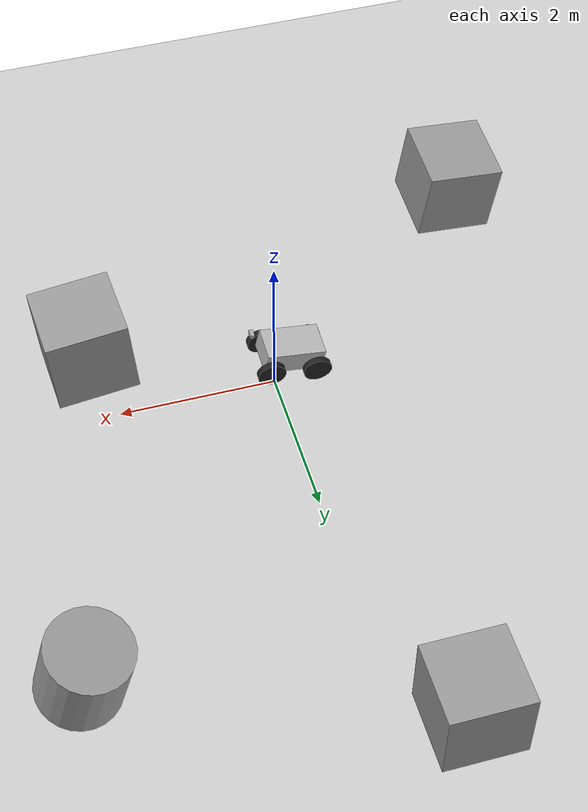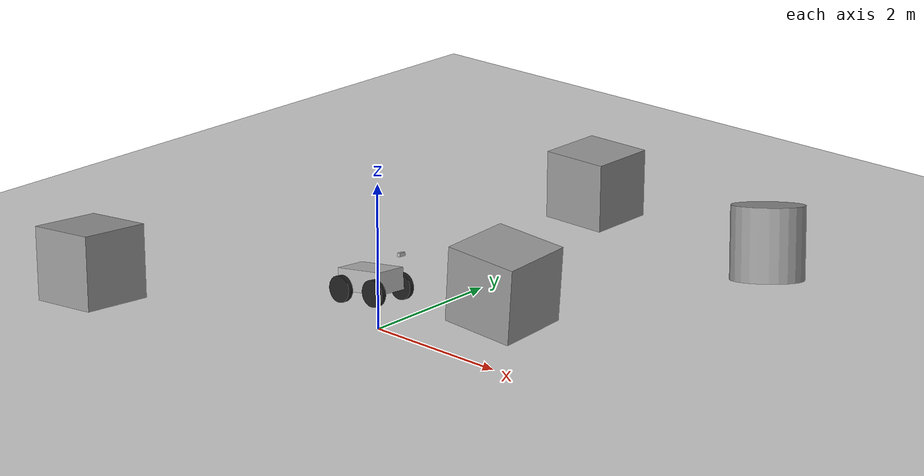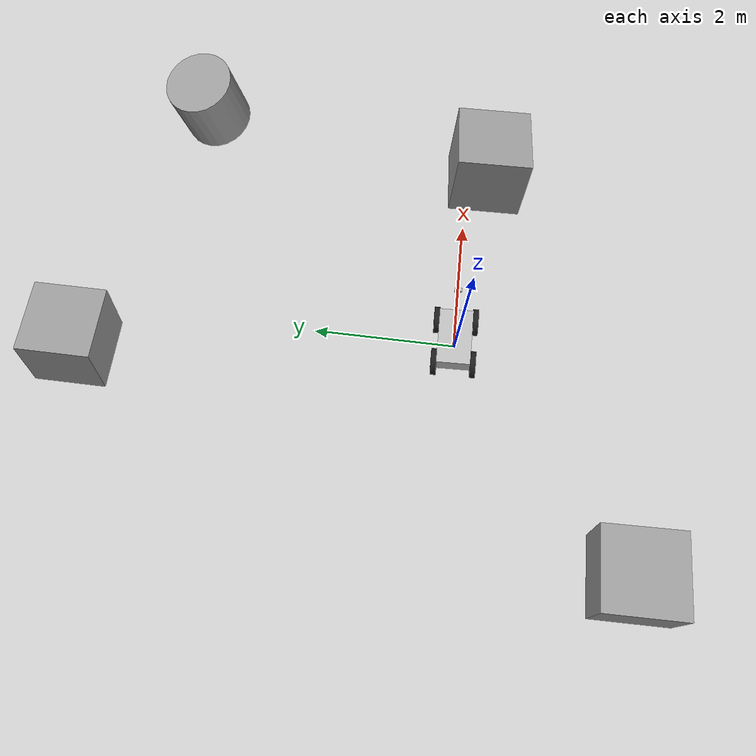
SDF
<sdf version="1.6">
 <world name="default">
  <light name="sun" type="directional">
   <pose>0 0 10 0 -0 0</pose>
   <diffuse>0.8 0.8 0.8 1</diffuse>
   <specular>0.2 0.2 0.2 1</specular>
   <attenuation>
    <range>1000</range>
    <constant>0.9</constant>
    <linear>0.01</linear>
    <quadratic>0.001</quadratic>
   </attenuation>
   <direction>-0.5 0.1 -0.9</direction>
  </light>
  <model name="ground_plane">
   <static>1</static>
   <link name="link">
    <collision name="collision">
     <geometry><plane><normal>0 0 1</normal><size>100 100</size></plane></geometry>
     <surface>
      <contact><collide_bitmask>65535</collide_bitmask></contact>
      <friction><ode><mu>100</mu><mu2>50</mu2></ode></friction>
     </surface>
    </collision>
    <visual name="visual">
     <cast_shadows>0</cast_shadows>
     <geometry><plane><normal>0 0 1</normal><size>100 100</size></plane></geometry>
     <material>
      <script><uri>file://media/materials/scripts/gazebo.material</uri><name>Gazebo/Grey</name></script>
     </material>
    </visual>
   </link>
  </model>
  <gravity>0 0 -9.8</gravity>
  <magnetic_field>6e-06 2.3e-05 -4.2e-05</magnetic_field>
  <atmosphere type="adiabatic"/>
  <physics name="default_physics" default="0" type="ode">
   <max_step_size>0.001</max_step_size>
   <real_time_factor>1</real_time_factor>
   <real_time_update_rate>1000</real_time_update_rate>
  </physics>
  <scene><ambient>0.4 0.4 0.4 1</ambient><background>0.7 0.7 0.7 1</background><shadows>1</shadows></scene>
  <spherical_coordinates>
   <surface_model>EARTH_WGS84</surface_model>
   <latitude_deg>0</latitude_deg>
   <longitude_deg>0</longitude_deg>
   <elevation>0</elevation>
   <heading_deg>0</heading_deg>
  </spherical_coordinates>
  <model name="rover">
   <link name="base_link">
    <inertial>
     <pose>0.00428 0 0.002605 0 -0 0</pose>
     <mass>10.075</mass>
     <inertia>
      <ixx>2.00912</ixx>
      <ixy>0</ixy>
      <ixz>-0.0149814</ixz>
      <iyy>2.03373</iyy>
      <iyz>0</iyz>
      <izz>2.02461</izz>
     </inertia>
    </inertial>
    <collision name="base_link_collision"><geometry><box><size>0.75 0.45 0.3</size></box></geometry></collision>
    <collision name="base_link_fixed_joint_lump__camera_link_collision_1">
     <pose>0.575 0 0.375 0 -0 0</pose>
     <geometry><box><size>0.05 0.1 0.05</size></box></geometry>
    </collision>
    <visual name="base_link_visual"><geometry><box><size>0.75 0.45 0.3</size></box></geometry></visual>
    <visual name="base_link_fixed_joint_lump__camera_link_visual_1">
     <pose>0.575 0 0.375 0 -0 0</pose>
     <geometry><box><size>0.05 0.1 0.05</size></box></geometry>
     <material><script><uri>__default__</uri><name>__default__</name></script></material>
    </visual>
    <sensor name="depth_camera" type="depth">
     <update_rate>30</update_rate>
     <camera name="__default__">
      <horizontal_fov>1.0472</horizontal_fov>
      <image><width>640</width><height>480</height><format>R8G8B8</format></image>
      <clip><near>0.05</near><far>3</far></clip>
     </camera>
     <plugin name="camera_controller" filename="libgazebo_ros_openni_kinect.so">
      <baseline>0.2</baseline>
      <alwaysOn>true</alwaysOn>
      <updateRate>1.0</updateRate>
      <cameraName>d400</cameraName>
      <imageTopicName>/camera/depth/image_raw</imageTopicName>
      <cameraInfoTopicName>/camera/depth/camera_info</cameraInfoTopicName>
      <depthImageTopicName>/camera/depth/image_raw</depthImageTopicName>
      <depthImageInfoTopicName>/camera/depth/camera_info</depthImageInfoTopicName>
      <pointCloudTopicName>/d400/depth/color/points</pointCloudTopicName>
      <frameName>camera_link_optical</frameName>
      <pointCloudCutoff>0.105</pointCloudCutoff>
      <pointCloudCutoffMax>7.0</pointCloudCutoffMax>
      <distortionK1>0.00000001</distortionK1>
      <distortionK2>0.00000001</distortionK2>
      <distortionK3>0.00000001</distortionK3>
      <distortionT1>0.00000001</distortionT1>
      <distortionT2>0.00000001</distortionT2>
      <CxPrime>0</CxPrime>
      <Cx>0</Cx>
      <Cy>0</Cy>
      <focalLength>0</focalLength>
      <hackBaseline>0</hackBaseline>
      <robotNamespace>/</robotNamespace>
     </plugin>
     <pose>0.575 0 0.35 0 -0 0</pose>
    </sensor>
   </link>
   <link name="back_left_wheel">
    <pose>-0.3 0.2625 -0.12 0 -0 0</pose>
    <inertial>
     <mass>1</mass>
     <inertia><ixx>1</ixx><ixy>0</ixy><ixz>0</ixz><iyy>1</iyy><iyz>0</iyz><izz>1</izz></inertia>
    </inertial>
    <collision name="back_left_wheel_collision">
     <pose>0 0 0 -3.14158 1.57079 -1.57078</pose>
     <geometry><cylinder><length>0.075</length><radius>0.18</radius></cylinder></geometry>
     <surface>
      <contact><ode><kp>1e+07</kp><kd>1</kd></ode></contact>
      <friction><ode><mu>200</mu><mu2>100</mu2></ode></friction>
     </surface>
    </collision>
    <visual name="back_left_wheel_visual">
     <pose>0 0 0 -3.14158 1.57079 -1.57078</pose>
     <geometry><cylinder><length>0.075</length><radius>0.18</radius></cylinder></geometry>
     <material>
      <script><name>Gazebo/Black</name><uri>file://media/materials/scripts/gazebo.material</uri></script>
     </material>
    </visual>
   </link>
   <joint name="back_left_wheel_joint" type="revolute">
    <child>back_left_wheel</child>
    <parent>base_link</parent>
    <axis>
     <xyz>0 1 0</xyz>
     <limit><lower>-1e+16</lower><upper>1e+16</upper></limit>
     <dynamics><spring_reference>0</spring_reference><spring_stiffness>0</spring_stiffness></dynamics>
     <use_parent_model_frame>1</use_parent_model_frame>
    </axis>
   </joint>
   <link name="back_right_wheel">
    <pose>-0.3 -0.2625 -0.12 0 -0 0</pose>
    <inertial>
     <mass>1</mass>
     <inertia><ixx>1</ixx><ixy>0</ixy><ixz>0</ixz><iyy>1</iyy><iyz>0</iyz><izz>1</izz></inertia>
    </inertial>
    <collision name="back_right_wheel_collision">
     <pose>0 0 0 -3.14158 1.57079 -1.57078</pose>
     <geometry><cylinder><length>0.075</length><radius>0.18</radius></cylinder></geometry>
     <surface>
      <contact><ode><kp>1e+07</kp><kd>1</kd></ode></contact>
      <friction><ode><mu>200</mu><mu2>100</mu2></ode></friction>
     </surface>
    </collision>
    <visual name="back_right_wheel_visual">
     <pose>0 0 0 -3.14158 1.57079 -1.57078</pose>
     <geometry><cylinder><length>0.075</length><radius>0.18</radius></cylinder></geometry>
     <material>
      <script><name>Gazebo/Black</name><uri>file://media/materials/scripts/gazebo.material</uri></script>
     </material>
    </visual>
   </link>
   <joint name="back_right_wheel_joint" type="revolute">
    <child>back_right_wheel</child>
    <parent>base_link</parent>
    <axis>
     <xyz>0 1 0</xyz>
     <limit><lower>-1e+16</lower><upper>1e+16</upper></limit>
     <dynamics><spring_reference>0</spring_reference><spring_stiffness>0</spring_stiffness></dynamics>
     <use_parent_model_frame>1</use_parent_model_frame>
    </axis>
   </joint>
   <link name="front_left_wheel">
    <pose>0.3 0.2625 -0.12 0 -0 0</pose>
    <inertial>
     <mass>1</mass>
     <inertia><ixx>1</ixx><ixy>0</ixy><ixz>0</ixz><iyy>1</iyy><iyz>0</iyz><izz>1</izz></inertia>
    </inertial>
    <collision name="front_left_wheel_collision">
     <pose>0 0 0 -3.14158 1.57079 -1.57078</pose>
     <geometry><cylinder><length>0.075</length><radius>0.18</radius></cylinder></geometry>
     <surface>
      <contact><ode><kp>1e+07</kp><kd>1</kd></ode></contact>
      <friction><ode><mu>200</mu><mu2>100</mu2></ode></friction>
     </surface>
    </collision>
    <visual name="front_left_wheel_visual">
     <pose>0 0 0 -3.14158 1.57079 -1.57078</pose>
     <geometry><cylinder><length>0.075</length><radius>0.18</radius></cylinder></geometry>
     <material>
      <script><name>Gazebo/Black</name><uri>file://media/materials/scripts/gazebo.material</uri></script>
     </material>
    </visual>
   </link>
   <joint name="front_left_wheel_joint" type="revolute">
    <child>front_left_wheel</child>
    <parent>base_link</parent>
    <axis>
     <xyz>0 1 0</xyz>
     <limit><lower>-1e+16</lower><upper>1e+16</upper></limit>
     <dynamics><spring_reference>0</spring_reference><spring_stiffness>0</spring_stiffness></dynamics>
     <use_parent_model_frame>1</use_parent_model_frame>
    </axis>
   </joint>
   <link name="front_right_wheel">
    <pose>0.3 -0.2625 -0.12 0 -0 0</pose>
    <inertial>
     <mass>1</mass>
     <inertia><ixx>1</ixx><ixy>0</ixy><ixz>0</ixz><iyy>1</iyy><iyz>0</iyz><izz>1</izz></inertia>
    </inertial>
    <collision name="front_right_wheel_collision">
     <pose>0 0 0 -3.14158 1.57079 -1.57078</pose>
     <geometry><cylinder><length>0.075</length><radius>0.18</radius></cylinder></geometry>
     <surface>
      <contact><ode><kp>1e+07</kp><kd>1</kd></ode></contact>
      <friction><ode><mu>200</mu><mu2>100</mu2></ode></friction>
     </surface>
    </collision>
    <visual name="front_right_wheel_visual">
     <pose>0 0 0 -3.14158 1.57079 -1.57078</pose>
     <geometry><cylinder><length>0.075</length><radius>0.18</radius></cylinder></geometry>
     <material>
      <script><name>Gazebo/Black</name><uri>file://media/materials/scripts/gazebo.material</uri></script>
     </material>
    </visual>
   </link>
   <joint name="front_right_wheel_joint" type="revolute">
    <child>front_right_wheel</child>
    <parent>base_link</parent>
    <axis>
     <xyz>0 1 0</xyz>
     <limit><lower>-1e+16</lower><upper>1e+16</upper></limit>
     <dynamics><spring_reference>0</spring_reference><spring_stiffness>0</spring_stiffness></dynamics>
     <use_parent_model_frame>1</use_parent_model_frame>
    </axis>
   </joint>
   <static>0</static>
   <plugin name="skid_steer_drive_controller" filename="libgazebo_ros_skid_steer_drive.so">
    <updateRate>100.0</updateRate>
    <robotNamespace>/</robotNamespace>
    <leftFrontJoint>front_left_wheel_joint</leftFrontJoint>
    <rightFrontJoint>front_right_wheel_joint</rightFrontJoint>
    <leftRearJoint>back_left_wheel_joint</leftRearJoint>
    <rightRearJoint>back_right_wheel_joint</rightRearJoint>
    <wheelSeparation>0.525</wheelSeparation>
    <wheelDiameter>0.36</wheelDiameter>
    <robotBaseFrame>base_link</robotBaseFrame>
    <torque>20</torque>
    <topicName>cmd_vel</topicName>
    <broadcastTF>true</broadcastTF>
    <odometryTopic>t265_odom_frame</odometryTopic>
    <odometryFrame>t265_odom_frame</odometryFrame>
   </plugin>
   <pose>-0.193762 0.060236 0.640964 -0.087171 -0.153352 0.010043</pose>
  </model>
  <model name="unit_box">
   <pose>2.3302 -0.181201 1.3033 0.027733 0.077596 0.043966</pose>
   <link name="link">
    <inertial>
     <mass>1</mass>
     <inertia>
      <ixx>0.166667</ixx>
      <ixy>0</ixy>
      <ixz>0</ixz>
      <iyy>0.166667</iyy>
      <iyz>0</iyz>
      <izz>0.166667</izz>
     </inertia>
    </inertial>
    <collision name="collision"><geometry><box><size>1 1 1</size></box></geometry></collision>
    <visual name="visual">
     <geometry><box><size>1 1 1</size></box></geometry>
     <material>
      <script><name>Gazebo/Grey</name><uri>file://media/materials/scripts/gazebo.material</uri></script>
     </material>
    </visual>
   </link>
  </model>
  <model name="unit_box_0">
   <pose>-3.07429 -2.24818 0.767635 -0.082976 -0.09383 0.014195</pose>
   <link name="link">
    <inertial>
     <mass>1</mass>
     <inertia>
      <ixx>0.166667</ixx>
      <ixy>0</ixy>
      <ixz>0</ixz>
      <iyy>0.166667</iyy>
      <iyz>0</iyz>
      <izz>0.166667</izz>
     </inertia>
    </inertial>
    <collision name="collision"><geometry><box><size>1 1 1</size></box></geometry></collision>
    <visual name="visual">
     <geometry><box><size>1 1 1</size></box></geometry>
     <material>
      <script><name>Gazebo/Grey</name><uri>file://media/materials/scripts/gazebo.material</uri></script>
     </material>
    </visual>
   </link>
  </model>
  <model name="unit_box_1">
   <pose>-0.724498 5.2926 0.499995 -1e-05 0 0</pose>
   <link name="link">
    <inertial>
     <mass>1</mass>
     <inertia>
      <ixx>0.166667</ixx>
      <ixy>0</ixy>
      <ixz>0</ixz>
      <iyy>0.166667</iyy>
      <iyz>0</iyz>
      <izz>0.166667</izz>
     </inertia>
    </inertial>
    <collision name="collision"><geometry><box><size>1 1 1</size></box></geometry></collision>
    <visual name="visual">
     <geometry><box><size>1 1 1</size></box></geometry>
     <material>
      <script><name>Gazebo/Grey</name><uri>file://media/materials/scripts/gazebo.material</uri></script>
     </material>
    </visual>
   </link>
  </model>
  <model name="unit_cylinder">
   <pose>3.23637 4.06685 0.920607 -0.080146 0.235443 1.96576</pose>
   <link name="link">
    <inertial>
     <mass>1</mass>
     <inertia><ixx>0.145833</ixx><ixy>0</ixy><ixz>0</ixz><iyy>0.145833</iyy><iyz>0</iyz><izz>0.125</izz></inertia>
    </inertial>
    <collision name="collision">
     <geometry><cylinder><radius>0.5</radius><length>1</length></cylinder></geometry>
    </collision>
    <visual name="visual">
     <geometry><cylinder><radius>0.5</radius><length>1</length></cylinder></geometry>
     <material>
      <script><name>Gazebo/Grey</name><uri>file://media/materials/scripts/gazebo.material</uri></script>
     </material>
    </visual>
   </link>
  </model>
 </world>
</sdf>
